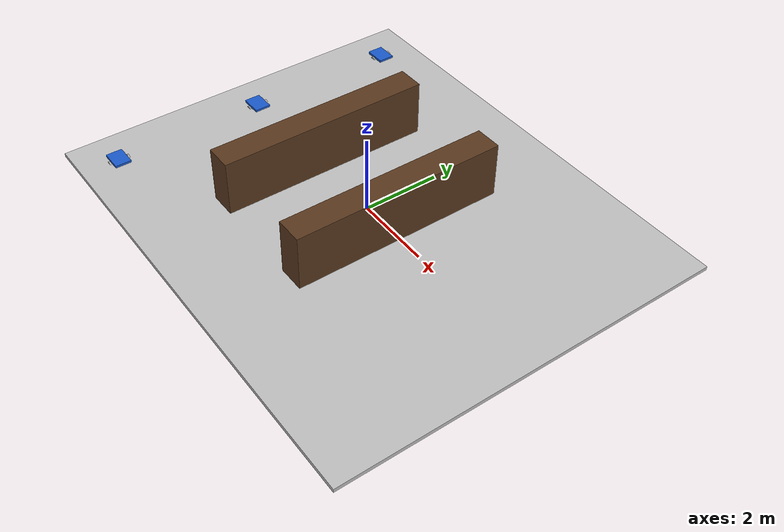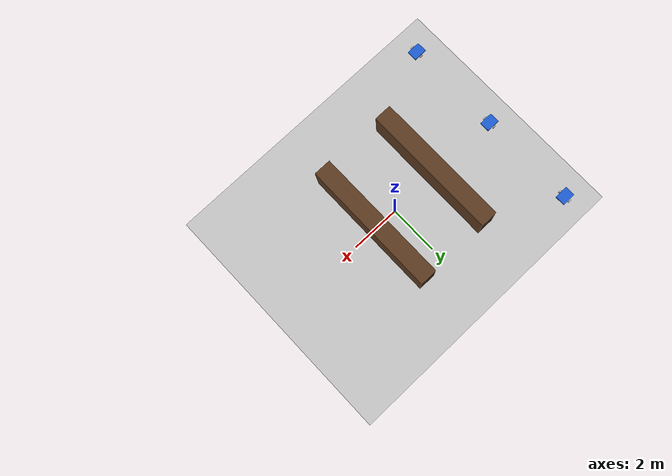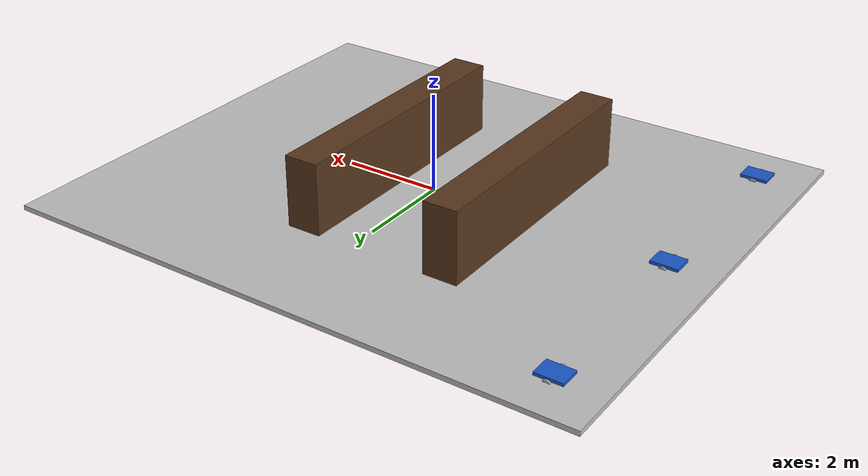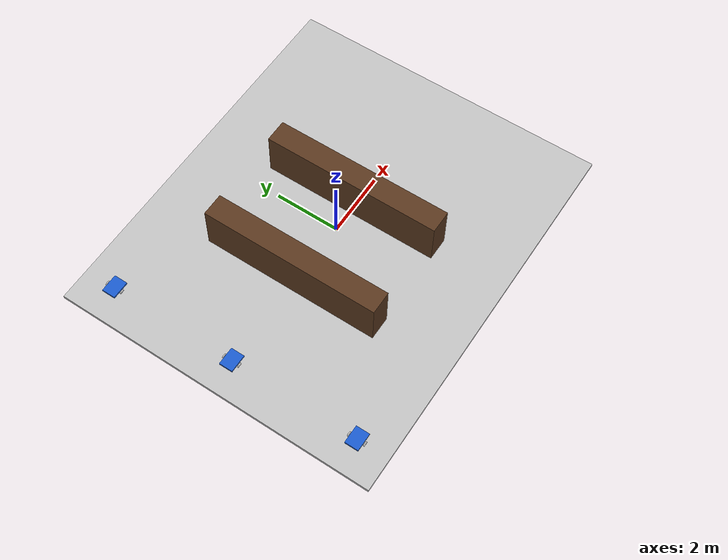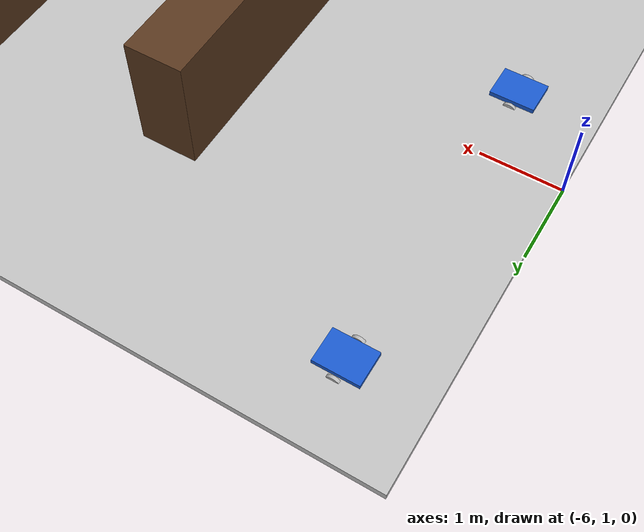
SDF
<?xml version="1.0"?>
<sdf version="1.10">
  <world name="fleetrl_warehouse">
    <physics name="1ms" type="ignored"><max_step_size>0.001</max_step_size><real_time_factor>1.0</real_time_factor></physics>
    <plugin filename="gz-sim-physics-system" name="gz::sim::systems::Physics"/>
    <plugin filename="gz-sim-user-commands-system" name="gz::sim::systems::UserCommands"/>
    <plugin filename="gz-sim-scene-broadcaster-system" name="gz::sim::systems::SceneBroadcaster"/>
    <plugin filename="gz-sim-sensors-system" name="gz::sim::systems::Sensors"><render_engine>ogre2</render_engine></plugin>
    <light type="directional" name="sun"><pose>0 0 10 0 0 0</pose><diffuse>0.9 0.9 0.9 1</diffuse><specular>0.2 0.2 0.2 1</specular><direction>-0.5 0.1 -0.9</direction></light>
    <model name="floor"><static>true</static><link name="link"><collision name="collision"><geometry><box><size>12 10 0.1</size></box></geometry></collision><visual name="visual"><geometry><box><size>12 10 0.1</size></box></geometry><material><ambient>0.75 0.75 0.75 1</ambient></material></visual></link></model>
    <!-- Warehouse shelf rows leave a central cross-aisle. -->
    <model name="shelf_a"><static>true</static><pose>-2 0 0.75 0 0 0</pose><link name="link"><collision name="c"><geometry><box><size>0.7 5.5 1.5</size></box></geometry></collision><visual name="v"><geometry><box><size>0.7 5.5 1.5</size></box></geometry><material><ambient>0.35 0.22 0.12 1</ambient></material></visual></link></model>
    <model name="shelf_b"><static>true</static><pose>1 0 0.75 0 0 0</pose><link name="link"><collision name="c"><geometry><box><size>0.7 5.5 1.5</size></box></geometry></collision><visual name="v"><geometry><box><size>0.7 5.5 1.5</size></box></geometry><material><ambient>0.35 0.22 0.12 1</ambient></material></visual></link></model>
    <include><uri>model://fleet_bot</uri><name>robot_0</name><pose>-5 -4 0 0 0 0</pose></include>
    <include><uri>model://fleet_bot</uri><name>robot_1</name><pose>-5 0 0 0 0 0</pose></include>
    <include><uri>model://fleet_bot</uri><name>robot_2</name><pose>-5 4 0 0 0 0</pose></include>
  </world>
</sdf>

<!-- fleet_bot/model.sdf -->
<sdf version="1.10">
  <model name="fleet_bot">
    <pose>0 0 0.18 0 0 0</pose>
    <link name="base_link">
      <inertial><mass>12.0</mass><inertia><ixx>0.35</ixx><iyy>0.35</iyy><izz>0.45</izz></inertia></inertial>
      <collision name="body_collision"><geometry><box><size>0.55 0.42 0.22</size></box></geometry></collision>
      <visual name="body_visual"><geometry><box><size>0.55 0.42 0.22</size></box></geometry><material><ambient>0.1 0.35 0.8 1</ambient><diffuse>0.1 0.35 0.8 1</diffuse></material></visual>
      <sensor name="lidar" type="gpu_lidar">
        <pose>0.08 0 0.20 0 0 0</pose>
        <topic>scan</topic>
        <update_rate>10</update_rate>
        <ray><scan><horizontal><samples>360</samples><resolution>1</resolution><min_angle>-3.14159</min_angle><max_angle>3.14159</max_angle></horizontal></scan><range><min>0.12</min><max>8.0</max><resolution>0.02</resolution></range></ray>
        <always_on>true</always_on><visualize>true</visualize>
      </sensor>
    </link>
    <link name="left_wheel"><pose>0 0.25 0 1.5708 0 0</pose><collision name="c"><geometry><cylinder><radius>0.09</radius><length>0.04</length></cylinder></geometry></collision><visual name="v"><geometry><cylinder><radius>0.09</radius><length>0.04</length></cylinder></geometry></visual></link>
    <link name="right_wheel"><pose>0 -0.25 0 1.5708 0 0</pose><collision name="c"><geometry><cylinder><radius>0.09</radius><length>0.04</length></cylinder></geometry></collision><visual name="v"><geometry><cylinder><radius>0.09</radius><length>0.04</length></cylinder></geometry></visual></link>
    <joint name="left_wheel_joint" type="revolute"><parent>base_link</parent><child>left_wheel</child><axis><xyz>0 1 0</xyz></axis></joint>
    <joint name="right_wheel_joint" type="revolute"><parent>base_link</parent><child>right_wheel</child><axis><xyz>0 1 0</xyz></axis></joint>
    <plugin filename="gz-sim-diff-drive-system" name="gz::sim::systems::DiffDrive">
      <left_joint>left_wheel_joint</left_joint><right_joint>right_wheel_joint</right_joint>
      <wheel_separation>0.50</wheel_separation><wheel_radius>0.09</wheel_radius>
      <topic>cmd_vel</topic><odom_topic>odom</odom_topic><frame_id>odom</frame_id><child_frame_id>base_link</child_frame_id>
    </plugin>
    <plugin filename="gz-sim-joint-state-publisher-system" name="gz::sim::systems::JointStatePublisher"/>
  </model>
</sdf>
